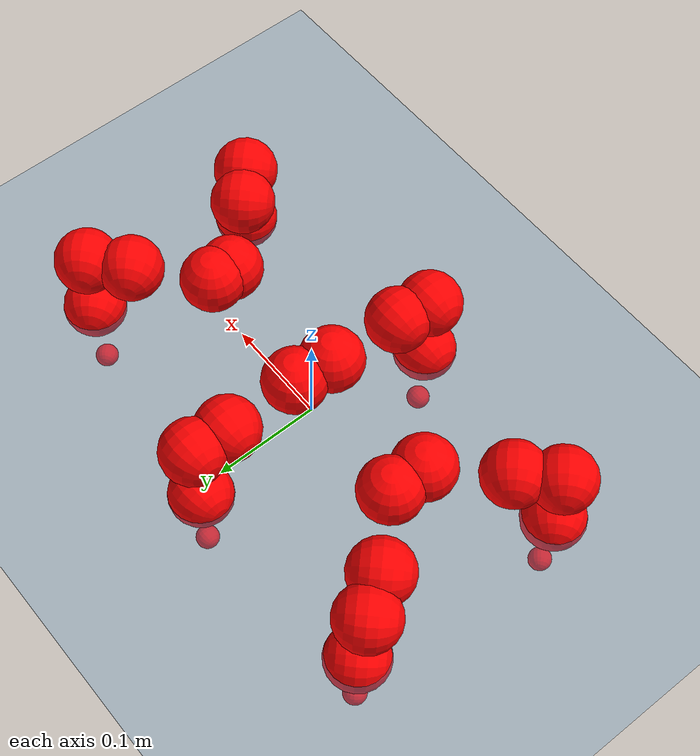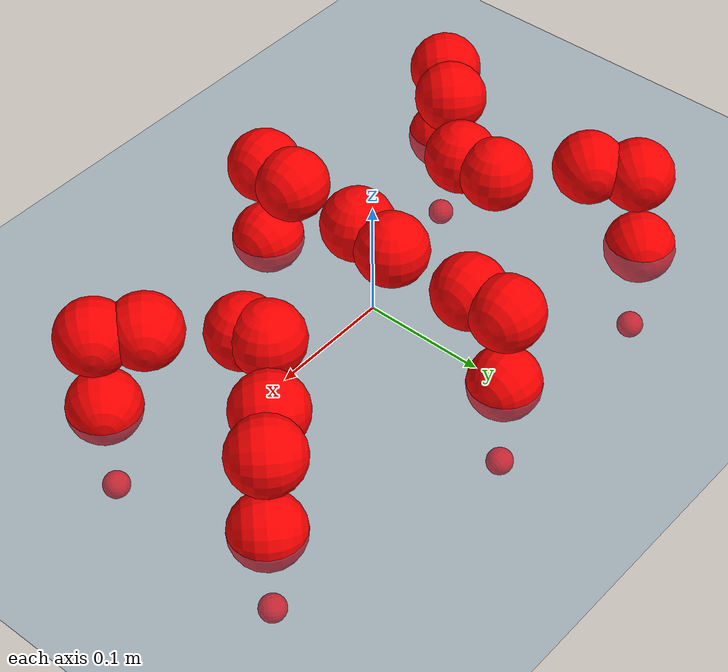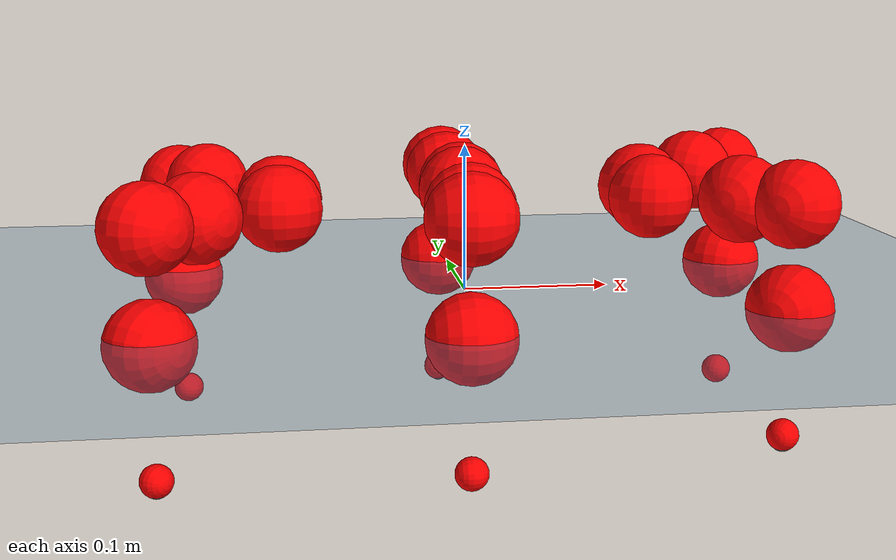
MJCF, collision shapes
<mujoco model="Golem">
  <compiler angle="radian" assetdir="assets" balanceinertia="true" inertiafromgeom="false"/>

  <option timestep="0.005" density="1.2" viscosity="2e-05"/>

  <size nkey="1"/>

  <visual>
    <quality shadowsize="8192"/>
    <map shadowclip="0.5"/>
  </visual>

  <default>
    <default class="/">
      <joint armature="0.01" damping="0.01" frictionloss="0.01"/>
      <geom contype="0" conaffinity="0" group="1" solref="-1000 -80"/>
      <site size="0.01 0.005 0.005" group="5"/>
      <general forcelimited="true" biastype="affine" gainprm="25" biasprm="0 -25 -0.5"/>
      <default class="visual">
        <geom type="mesh" group="2"/>
      </default>
      <default class="collision">
        <geom group="3"/>
      </default>
      <default class="foot">
        <geom size="0.01 0 0" condim="6" group="4" priority="1" solimp="0.015 1 0.01"/>
      </default>
      <default class="reward_collision_sphere">
        <geom group="5" rgba="1 0 0 1"/>
      </default>
    </default>
  </default>

  <asset>
    <texture type="skybox" colorspace="auto" name="//unnamed_texture_0" builtin="gradient" rgb1="0.95 0.95 0.95" rgb2="0.95 0.95 0.95" width="100" height="600"/>
    <texture type="2d" colorspace="auto" name="texplane" builtin="checker" rgb1="0.345 0.575 0.748" rgb2="0.345 0.575 0.748" markrgb="1 1 1" width="512" height="512"/>
    <material name="MatPlane" class="/" texture="texplane" texuniform="true" texrepeat="2 2" specular="0.9"/>
    <mesh name="body" class="/" file="body.stl" scale="0.001 0.001 0.001"/>
    <mesh name="coxa" class="/" file="coxa.stl" scale="0.001 0.001 0.001"/>
    <mesh name="femur" class="/" file="femur.stl" scale="0.001 0.001 0.001"/>
    <mesh name="tibia" class="/" file="tibia.stl" scale="0.001 0.001 0.001"/>
    <mesh name="tarsus" class="/" file="tarsus.stl" scale="0.001 0.001 0.001"/>
  </asset>

  <worldbody>
    <geom name="floor" class="/" size="100 100 0.125" type="plane" group="0" material="MatPlane"/>
    <light name="toplight_shadow" class="/" pos="0 0 5" dir="0.0990148 0.0990148 -0.990148" type="directional" ambient="0.04 0.04 0.04" diffuse="0.55 0.55 0.55" specular="0.12 0.12 0.12"/>
    <light name="toplight_fill" class="/" pos="0 0 5" dir="0.0990148 0.0990148 -0.990148" type="directional" castshadow="false" ambient="0.04 0.04 0.04" diffuse="0.3 0.3 0.3" specular="0.08 0.08 0.08"/>
    <body name="trunk" pos="-0.000222216 0.000133916 0.00251694" quat="0.999999 0.000714262 0.000614294 0.000944774">
      <inertial pos="0.00328788 -0.00011184 -0.00298086" quat="0.999999 0.000701544 -0.00127173 -6.76638e-05" mass="1.40663" diaginertia="0.00366682 5.23433e-05 0.0115642"/>
      <joint name="//unnamed_joint_0" type="free"/>
      <geom name="//unnamed_geom_1" class="/" pos="0 0 0.0653227" quat="1 0 0 0" type="mesh" rgba="0.9 0.9 0.9 1" mesh="body"/>
      <site name="imu" class="/" pos="0.0958635 -0.00912689 0.0976434" size="0.00727392"/>
      <camera name="track" class="/" pos="0 -0.699722 0" quat="0.707107 0.707107 0 0" mode="trackcom"/>
      <camera name="ego_camera" class="/" pos="0.105514 0 0.102067" quat="-0.5 -0.5 0.5 0.5"/>
      <body name="coxa_RR" pos="-0.143219 -0.0329572 0.0593464" quat="0.38248 0.000368248 -0.00120822 -0.923963">
        <inertial pos="-0.000949648 0.000674556 0.000263244" quat="0.999977 0.00486556 0.0036368 -0.00289166" mass="0.0748225" diaginertia="0.00353087 5.18855e-05 0.0111766"/>
        <joint name="coxa_joint_RR" class="/" pos="0 0 0" axis="-0.00799517 -0.00451657 -0.999958" stiffness="0.00695031" range="-3.14405 3.16479" armature="0.00721337" damping="0" frictionloss="0.0079109"/>
        <geom name="//unnamed_geom_2" class="/" type="mesh" rgba="0.2 0.2 0.2 1" mesh="coxa"/>
        <geom name="//unnamed_geom_3" class="reward_collision_sphere" size="0.0290957" pos="-0.0243494 0 0"/>
        <body name="femur_RR" pos="0.0481525 5.78482e-05 0.00336964" quat="0.500506 -0.499786 0.499472 0.500235">
          <inertial pos="-0.0011071 0.000672866 -0.00249223" quat="0.999999 -0.000754207 -0.000678471 0.00112711" mass="0.0764218" diaginertia="0.00361124 5.35743e-05 0.0106531"/>
          <joint name="femur_joint_RR" class="/" pos="0 0 0" axis="0.00991337 0.00577855 -0.999934" range="-3.16404 3.13082" armature="0.00758905" damping="0.000239656" frictionloss="0.00628472"/>
          <geom name="//unnamed_geom_4" class="/" type="mesh" rgba="0.9 0.9 0.9 1" mesh="femur"/>
          <geom name="//unnamed_geom_5" class="reward_collision_sphere" size="0.0290957"/>
          <body name="tibia_RR" pos="0.00068577 -0.0402232 -0.000225303" quat="0.00012257 1 -0.000292462 -0.000201418">
            <inertial pos="0.000125121 0.00188065 0.001651" quat="0.999998 -0.00127487 -0.00161413 0.000648885" mass="0.0767773" diaginertia="0.0033938 5.25204e-05 0.0110997"/>
            <joint name="tibia_joint_RR" class="/" pos="0 0 0" axis="-0.00366787 -0.00650478 0.999972" stiffness="0.00935709" range="-3.17096 3.13289" armature="0.00728317" damping="0.0103202" frictionloss="0.00662613"/>
            <geom name="//unnamed_geom_6" class="/" type="mesh" rgba="0.2 0.2 0.2 1" mesh="tibia"/>
            <geom name="//unnamed_geom_7" class="reward_collision_sphere" size="0.0290957"/>
            <body name="tarsus_RR" pos="0.0719362 0.00132255 -0.000267717" quat="0.999999 -0.000281368 -0.00115262 0.000732041">
              <inertial pos="0.0494881 -0.000675559 0.00205701" quat="0.498803 0.503162 0.499117 0.498904" mass="0.0775988" diaginertia="0.00371074 5.25473e-05 0.0115878"/>
              <joint name="tarsus_joint_RR" class="/" pos="0 0 0" axis="0.000930902 -0.000559716 0.999999" range="-3.18731 3.1054" armature="0.00632839" damping="0.0158754" frictionloss="0.0080293"/>
              <geom name="//unnamed_geom_8" class="/" type="mesh" rgba="0.9 0.9 0.9 1" mesh="tarsus"/>
              <geom name="foot_1" class="foot" size="0.00785985" pos="0.0909046 0 0" quat="0 -0.707107 0 0.707107"/>
              <geom name="//unnamed_geom_10" class="reward_collision_sphere" size="0.0290957"/>
              <geom name="//unnamed_geom_11" class="reward_collision_sphere" size="0.0109109" pos="0.0872521 0 0"/>
              <site name="foot_1" class="foot" pos="0.0909046 0 0" quat="0 -0.707107 0 0.707107" size="0.00727392"/>
            </body>
          </body>
        </body>
      </body>
      <body name="coxa_RM" pos="-0.00428529 -0.0424474 0.0700265" quat="0.706772 0.000322413 -0.000146168 -0.707442">
        <inertial pos="0.0023965 0.000721832 0.00268396" quat="0.999998 -0.00136968 0.00121553 0.00113029" mass="0.0750329" diaginertia="0.00347766 5.08595e-05 0.0108127"/>
        <joint name="coxa_joint_RM" class="/" pos="0 0 0" axis="0.00314258 0.00244485 -0.999992" range="-3.13518 3.13666" armature="0.00646555" damping="0.0199143" frictionloss="0.00695062"/>
        <geom name="//unnamed_geom_12" class="/" type="mesh" rgba="0.2 0.2 0.2 1" mesh="coxa"/>
        <geom name="//unnamed_geom_13" class="reward_collision_sphere" size="0.0290957" pos="-0.0243494 0 0"/>
        <body name="femur_RM" pos="0.0450919 -0.00411623 -0.00132349" quat="0.500144 -0.500035 0.499858 0.499962">
          <inertial pos="0.00149406 0.00210143 0.00062608" quat="0.999922 0.00302586 0.00397203 -0.0114826" mass="0.0800071" diaginertia="0.00363456 5.11309e-05 0.0108091"/>
          <joint name="femur_joint_RM" class="/" pos="0 0 0" axis="-0.00780147 -0.0109343 -0.99991" range="-3.18527 3.15229" armature="0.00706761" damping="0.0147916" frictionloss="0.00770656"/>
          <geom name="//unnamed_geom_14" class="/" type="mesh" rgba="0.9 0.9 0.9 1" mesh="femur"/>
          <geom name="//unnamed_geom_15" class="reward_collision_sphere" size="0.0290957"/>
          <body name="tibia_RM" pos="0.000843609 -0.0324614 -0.00381078" quat="-4.35833e-05 1 0.000430941 0.000580935">
            <inertial pos="0.00270445 -0.00322664 0.000839437" quat="0.999998 0.00133529 0.000588007 -0.00131357" mass="0.0763262" diaginertia="0.00344107 5.19033e-05 0.0109495"/>
            <joint name="tibia_joint_RM" class="/" pos="0 0 0" axis="-0.000600688 0.000254244 1" stiffness="0.000919142" range="-3.09763 3.08812" armature="0.00689819" damping="0.0189372" frictionloss="0.00644089"/>
            <geom name="//unnamed_geom_16" class="/" type="mesh" rgba="0.2 0.2 0.2 1" mesh="tibia"/>
            <geom name="//unnamed_geom_17" class="reward_collision_sphere" size="0.0290957"/>
            <body name="tarsus_RM" pos="0.0740692 0.00042577 -0.000119175" quat="1 0.000154532 0.000344136 -0.000146287">
              <inertial pos="0.0502651 -0.001926 -0.000413491" quat="0.496274 0.500262 0.504206 0.499226" mass="0.0790058" diaginertia="0.00362046 5.40375e-05 0.0108797"/>
              <joint name="tarsus_joint_RM" class="/" pos="0 0 0" axis="-0.000133391 -0.000200227 1" stiffness="0.00431675" range="-3.17184 3.18455" armature="0.00623915" damping="0.00487231" frictionloss="0.00720258"/>
              <geom name="//unnamed_geom_18" class="/" type="mesh" rgba="0.9 0.9 0.9 1" mesh="tarsus"/>
              <geom name="foot_2" class="foot" size="0.00692312" pos="0.0909046 0 0" quat="0 -0.707107 0 0.707107"/>
              <geom name="//unnamed_geom_20" class="reward_collision_sphere" size="0.0290957"/>
              <geom name="//unnamed_geom_21" class="reward_collision_sphere" size="0.0109109" pos="0.0872521 0 0"/>
              <site name="foot_2" class="foot" pos="0.0909046 0 0" quat="0 -0.707107 0 0.707107" size="0.00727392"/>
            </body>
          </body>
        </body>
      </body>
      <body name="coxa_RF" pos="0.145063 -0.0290068 0.0618117" quat="0.923858 -0.000433577 0.000132256 -0.382734">
        <inertial pos="-0.000618257 0.00288651 0.00179084" quat="0.99999 -0.000701278 -0.00396686 0.00187753" mass="0.0739397" diaginertia="0.00354438 5.35791e-05 0.0110393"/>
        <joint name="coxa_joint_RF" class="/" pos="0 0 0" axis="0.000486736 0.00256523 -0.999997" range="-3.19069 3.11244" armature="0.00671726" damping="0.0284094" frictionloss="0.00679106"/>
        <geom name="//unnamed_geom_22" class="/" type="mesh" rgba="0.2 0.2 0.2 1" mesh="coxa"/>
        <geom name="//unnamed_geom_23" class="reward_collision_sphere" size="0.0290957" pos="-0.0243494 0 0"/>
        <body name="femur_RF" pos="0.0450329 -0.00154411 0.00502683" quat="0.500232 -0.500164 0.499579 0.500025">
          <inertial pos="0.000793984 -0.000737869 -0.00123516" quat="0.999966 -0.00255991 -0.00661758 0.00414557" mass="0.0753837" diaginertia="0.00349479 5.41721e-05 0.0108774"/>
          <joint name="femur_joint_RF" class="/" pos="0 0 0" axis="-0.0101245 0.00847005 -0.999913" stiffness="0.00479473" range="-3.11821 3.1388" armature="0.00796662" damping="0" frictionloss="0.00768355"/>
          <geom name="//unnamed_geom_24" class="/" type="mesh" rgba="0.9 0.9 0.9 1" mesh="femur"/>
          <geom name="//unnamed_geom_25" class="reward_collision_sphere" size="0.0290957"/>
          <body name="tibia_RF" pos="0.000299136 -0.036277 0.00218841" quat="-0.000144694 1 0.000213787 0.000282409">
            <inertial pos="0.00093476 0.00205006 -0.00265194" quat="0.999982 -0.00195248 0.00502191 -0.0024919" mass="0.0768254" diaginertia="0.00351377 5.0359e-05 0.0103974"/>
            <joint name="tibia_joint_RF" class="/" pos="0 0 0" axis="-0.000497949 0.00323562 0.999995" range="-3.18765 3.15871" armature="0.00624628" damping="0.0105171" frictionloss="0.00721674"/>
            <geom name="//unnamed_geom_26" class="/" type="mesh" rgba="0.2 0.2 0.2 1" mesh="tibia"/>
            <geom name="//unnamed_geom_27" class="reward_collision_sphere" size="0.0290957"/>
            <body name="tarsus_RF" pos="0.0693106 -0.000941209 -0.00192174" quat="1 -7.03675e-05 0.000425269 -0.000307427">
              <inertial pos="0.0502419 -0.000834168 -0.00249508" quat="0.500636 0.50035 0.49724 0.501763" mass="0.0764644" diaginertia="0.00353283 5.22445e-05 0.0112756"/>
              <joint name="tarsus_joint_RF" class="/" pos="0 0 0" axis="0.00368133 -0.00768856 0.999964" range="-3.17333 3.19019" armature="0.0073026" damping="0.0164218" frictionloss="0.0077128"/>
              <geom name="//unnamed_geom_28" class="/" type="mesh" rgba="0.9 0.9 0.9 1" mesh="tarsus"/>
              <geom name="foot_3" class="foot" size="0.00797946" pos="0.0909046 0 0" quat="0 -0.707107 0 0.707107"/>
              <geom name="//unnamed_geom_30" class="reward_collision_sphere" size="0.0290957"/>
              <geom name="//unnamed_geom_31" class="reward_collision_sphere" size="0.0109109" pos="0.0872521 0 0"/>
              <site name="foot_3" class="foot" pos="0.0909046 0 0" quat="0 -0.707107 0 0.707107" size="0.00727392"/>
            </body>
          </body>
        </body>
      </body>
      <body name="coxa_LR" pos="-0.142377 0.036162 0.060909" quat="0.383043 0.000417092 -0.000128515 0.923731">
        <inertial pos="-0.000827856 -0.00161115 -0.00149697" quat="0.999998 -0.00111413 0.00162024 0.000692661" mass="0.0783925" diaginertia="0.00367373 5.31111e-05 0.0112256"/>
        <joint name="coxa_joint_LR" class="/" pos="0 0 0" axis="0.00208587 0.00865356 -0.99996" range="-3.18573 3.1525" armature="0.00623649" damping="0.0243921" frictionloss="0.00761217"/>
        <geom name="//unnamed_geom_32" class="/" type="mesh" rgba="0.2 0.2 0.2 1" mesh="coxa"/>
        <geom name="//unnamed_geom_33" class="reward_collision_sphere" size="0.0290957" pos="-0.0243494 0 0"/>
        <body name="femur_LR" pos="0.0486427 -0.00145109 0.00266978" quat="0.500032 -0.499806 0.500372 0.49979">
          <inertial pos="0.00287495 -0.00153461 -0.000641575" quat="0.99999 0.00452718 0.000304886 -0.000550515" mass="0.07469" diaginertia="0.00350677 5.18646e-05 0.0113199"/>
          <joint name="femur_joint_LR" class="/" pos="0 0 0" axis="0.00127155 1.08751e-05 0.999999" stiffness="0.00618034" range="-3.09338 3.08361" armature="0.00721075" damping="0.0143352" frictionloss="0.00643015"/>
          <geom name="//unnamed_geom_34" class="/" type="mesh" rgba="0.9 0.9 0.9 1" mesh="femur"/>
          <geom name="//unnamed_geom_35" class="reward_collision_sphere" size="0.0290957"/>
          <body name="tibia_LR" pos="0.00453815 -0.0374243 -0.00719924" quat="-0.000722554 1 0.000226509 -0.000300832">
            <inertial pos="0.00305383 -0.00375341 0.00394016" quat="0.999914 0.0013363 -0.00333733 -0.0126166" mass="0.0729698" diaginertia="0.00344062 5.16373e-05 0.0107742"/>
            <joint name="tibia_joint_LR" class="/" pos="0 0 0" axis="-0.00345933 -0.00738063 -0.999967" range="-3.08628 3.15282" armature="0.00785742" damping="0.00405469" frictionloss="0.00649277"/>
            <geom name="//unnamed_geom_36" class="/" type="mesh" rgba="0.2 0.2 0.2 1" mesh="tibia"/>
            <geom name="//unnamed_geom_37" class="reward_collision_sphere" size="0.0290957"/>
            <body name="tarsus_LR" pos="0.0709925 0.00658117 0.00527995" quat="0.999999 -0.0010987 0.000431941 0.000351497">
              <inertial pos="0.0491698 -0.00146812 -0.00142647" quat="0.498205 0.501529 0.499648 0.500611" mass="0.0786718" diaginertia="0.00361264 5.21363e-05 0.0112851"/>
              <joint name="tarsus_joint_LR" class="/" pos="0 0 0" axis="-0.00858721 0.0101706 -0.999911" range="-3.1656 3.13845" armature="0.0072458" damping="0.0220893" frictionloss="0.00786074"/>
              <geom name="//unnamed_geom_38" class="/" type="mesh" rgba="0.9 0.9 0.9 1" mesh="tarsus"/>
              <geom name="foot_4" class="foot" size="0.00745498" pos="0.0909046 0 0" quat="0.707107 0 -0.707107 0"/>
              <geom name="//unnamed_geom_40" class="reward_collision_sphere" size="0.0290957"/>
              <geom name="//unnamed_geom_41" class="reward_collision_sphere" size="0.0109109" pos="0.0872521 0 0"/>
              <site name="foot_4" class="foot" pos="0.0909046 0 0" quat="0.707107 0 -0.707107 0" size="0.00727392"/>
            </body>
          </body>
        </body>
      </body>
      <body name="coxa_LM" pos="-0.00030617 0.0425001 0.068453" quat="0.706895 0.000641258 0.00122646 0.707317">
        <inertial pos="-0.00247983 -4.84688e-05 0.00173655" quat="0.999987 -0.00218306 -0.00455653 -0.000775629" mass="0.0717088" diaginertia="0.00330281 5.06897e-05 0.0110164"/>
        <joint name="coxa_joint_LM" class="/" pos="0 0 0" axis="3.64701e-06 -1.28131e-06 -1" range="-3.13951 3.09542" armature="0.00682266" damping="0.0179445" frictionloss="0.00738367"/>
        <geom name="//unnamed_geom_42" class="/" type="mesh" rgba="0.2 0.2 0.2 1" mesh="coxa"/>
        <geom name="//unnamed_geom_43" class="reward_collision_sphere" size="0.0290957" pos="-0.0243494 0 0"/>
        <body name="femur_LM" pos="0.0469199 0.00148415 -0.000501074" quat="0.500034 -0.499938 0.500068 0.499961">
          <inertial pos="0.000803785 -0.000873654 0.00045648" quat="0.999961 -0.00868787 0.00160249 -0.000237554" mass="0.0780777" diaginertia="0.00348851 5.32747e-05 0.0112923"/>
          <joint name="femur_joint_LM" class="/" pos="0 0 0" axis="0.0102222 0.00676332 0.999925" stiffness="0.0121325" range="-3.08966 3.12654" armature="0.00639648" damping="0.0105131" frictionloss="0.00782204"/>
          <geom name="//unnamed_geom_44" class="/" type="mesh" rgba="0.9 0.9 0.9 1" mesh="femur"/>
          <geom name="//unnamed_geom_45" class="reward_collision_sphere" size="0.0290957"/>
          <body name="tibia_LM" pos="-0.000342619 -0.0347088 -0.000623326" quat="0.000272681 1 -0.000537433 -0.000413427">
            <inertial pos="0.00181702 -0.00289875 0.000910363" quat="1 0.00014302 0.000671655 0.000528919" mass="0.0794148" diaginertia="0.00362069 5.33438e-05 0.011486"/>
            <joint name="tibia_joint_LM" class="/" pos="0 0 0" axis="0.00123159 -0.00064083 -0.999999" stiffness="0.0103831" range="-3.12456 3.1392" armature="0.00761232" damping="0.00521243" frictionloss="0.00656132"/>
            <geom name="//unnamed_geom_46" class="/" type="mesh" rgba="0.2 0.2 0.2 1" mesh="tibia"/>
            <geom name="//unnamed_geom_47" class="reward_collision_sphere" size="0.0290957"/>
            <body name="tarsus_LM" pos="0.0737144 -0.000434328 -0.00210968" quat="1 8.97387e-06 4.34678e-05 1.00916e-05">
              <inertial pos="0.0464388 -0.00176899 -5.32837e-05" quat="0.498434 0.500785 0.503814 0.49694" mass="0.0772487" diaginertia="0.00363761 5.35723e-05 0.0113414"/>
              <joint name="tarsus_joint_LM" class="/" pos="0 0 0" axis="0.000420233 -0.000834479 -1" range="-3.08681 3.12132" armature="0.00716501" damping="0" frictionloss="0.00724886"/>
              <geom name="//unnamed_geom_48" class="/" type="mesh" rgba="0.9 0.9 0.9 1" mesh="tarsus"/>
              <geom name="foot_5" class="foot" size="0.00780493" pos="0.0909046 0 0" quat="0.707107 0 -0.707107 0"/>
              <geom name="//unnamed_geom_50" class="reward_collision_sphere" size="0.0290957"/>
              <geom name="//unnamed_geom_51" class="reward_collision_sphere" size="0.0109109" pos="0.0872521 0 0"/>
              <site name="foot_5" class="foot" pos="0.0909046 0 0" quat="0.707107 0 -0.707107 0" size="0.00727392"/>
            </body>
          </body>
        </body>
      </body>
      <body name="coxa_LF" pos="0.142669 0.0264874 0.0664134" quat="0.924232 -0.000206975 -0.000638592 0.381832">
        <inertial pos="-0.00152097 -0.000850177 -0.00106612" quat="0.99992 -0.0105509 -0.00543207 -0.00436219" mass="0.0757459" diaginertia="0.00348121 5.23435e-05 0.0110327"/>
        <joint name="coxa_joint_LF" class="/" pos="0 0 0" axis="0.00565173 0.00536763 -0.99997" range="-3.16248 3.0841" armature="0.00723444" damping="0.0051603" frictionloss="0.00807186"/>
        <geom name="//unnamed_geom_52" class="/" type="mesh" rgba="0.2 0.2 0.2 1" mesh="coxa"/>
        <geom name="//unnamed_geom_53" class="reward_collision_sphere" size="0.0290957" pos="-0.0243494 0 0"/>
        <body name="femur_LF" pos="0.0473242 -0.0017199 0.00273278" quat="0.499769 -0.500479 0.500297 0.499454">
          <inertial pos="0.00130314 0.000491467 -0.00158565" quat="0.999923 -0.00439996 -0.000951749 0.0115232" mass="0.0776893" diaginertia="0.00344133 5.37766e-05 0.0109652"/>
          <joint name="femur_joint_LF" class="/" pos="0 0 0" axis="-0.0066372 -0.0080848 0.999945" range="-3.14505 3.0901" armature="0.00708903" damping="0.00452764" frictionloss="0.00829912"/>
          <geom name="//unnamed_geom_54" class="/" type="mesh" rgba="0.9 0.9 0.9 1" mesh="femur"/>
          <geom name="//unnamed_geom_55" class="reward_collision_sphere" size="0.0290957"/>
          <body name="tibia_LF" pos="0.000884106 -0.0397746 -0.00386589" quat="-0.000100382 1 0.000227288 0.000349207">
            <inertial pos="0.00173926 -0.000569113 -0.000348518" quat="0.999936 -0.00563038 -0.00513278 -0.00839239" mass="0.0781946" diaginertia="0.00339582 5.08504e-05 0.0107618"/>
            <joint name="tibia_joint_LF" class="/" pos="0 0 0" axis="0.0104353 0.00200049 -0.999944" range="-3.09582 3.13846" armature="0.00812775" damping="0" frictionloss="0.0068064"/>
            <geom name="//unnamed_geom_56" class="/" type="mesh" rgba="0.2 0.2 0.2 1" mesh="tibia"/>
            <geom name="//unnamed_geom_57" class="reward_collision_sphere" size="0.0290957"/>
            <body name="tarsus_LF" pos="0.0734875 0.00267577 0.00232173" quat="1 -2.92531e-05 3.58566e-05 0.00027263">
              <inertial pos="0.047115 0.000282627 -0.00201274" quat="0.500677 0.498838 0.499961 0.500521" mass="0.0723982" diaginertia="0.00352033 5.06667e-05 0.0108324"/>
              <joint name="tarsus_joint_LF" class="/" pos="0 0 0" axis="-0.000167947 0.00343095 -0.999994" stiffness="0.0364442" range="-3.14127 3.17518" armature="0.00739693" damping="0.034349" frictionloss="0.00778193"/>
              <geom name="//unnamed_geom_58" class="/" type="mesh" rgba="0.9 0.9 0.9 1" mesh="tarsus"/>
              <geom name="foot_6" class="foot" size="0.00747789" pos="0.0909046 0 0" quat="0.707107 0 -0.707107 0"/>
              <geom name="//unnamed_geom_60" class="reward_collision_sphere" size="0.0290957"/>
              <geom name="//unnamed_geom_61" class="reward_collision_sphere" size="0.0109109" pos="0.0872521 0 0"/>
              <site name="foot_6" class="foot" pos="0.0909046 0 0" quat="0.707107 0 -0.707107 0" size="0.00727392"/>
            </body>
          </body>
        </body>
      </body>
    </body>
  </worldbody>

  <contact>
    <pair class="/" geom1="floor" geom2="foot_1" name="//unnamed_contact_0"/>
    <pair class="/" geom1="floor" geom2="foot_2" name="//unnamed_contact_1"/>
    <pair class="/" geom1="floor" geom2="foot_3" name="//unnamed_contact_2"/>
    <pair class="/" geom1="floor" geom2="foot_4" name="//unnamed_contact_3"/>
    <pair class="/" geom1="floor" geom2="foot_5" name="//unnamed_contact_4"/>
    <pair class="/" geom1="floor" geom2="foot_6" name="//unnamed_contact_5"/>
  </contact>

  <actuator>
    <general name="coxa_joint_RR" class="/" joint="coxa_joint_RR" forcerange="-5.48474 5.48474" gainprm="19.1571" biasprm="0 -19.1571 -0.385589"/>
    <general name="femur_joint_RR" class="/" joint="femur_joint_RR" forcerange="-5.82162 5.82162" gainprm="19.1571" biasprm="0 -19.1571 -0.385589"/>
    <general name="tibia_joint_RR" class="/" joint="tibia_joint_RR" forcerange="-4.80858 4.80858" gainprm="19.1571" biasprm="0 -19.1571 -0.385589"/>
    <general name="tarsus_joint_RR" class="/" joint="tarsus_joint_RR" forcerange="-5.7367 5.7367" gainprm="19.1571" biasprm="0 -19.1571 -0.385589"/>
    <general name="coxa_joint_RM" class="/" joint="coxa_joint_RM" forcerange="-5.46248 5.46248" gainprm="19.1571" biasprm="0 -19.1571 -0.385589"/>
    <general name="femur_joint_RM" class="/" joint="femur_joint_RM" forcerange="-5.28469 5.28469" gainprm="19.1571" biasprm="0 -19.1571 -0.385589"/>
    <general name="tibia_joint_RM" class="/" joint="tibia_joint_RM" forcerange="-4.81142 4.81142" gainprm="19.1571" biasprm="0 -19.1571 -0.385589"/>
    <general name="tarsus_joint_RM" class="/" joint="tarsus_joint_RM" forcerange="-4.86699 4.86699" gainprm="19.1571" biasprm="0 -19.1571 -0.385589"/>
    <general name="coxa_joint_RF" class="/" joint="coxa_joint_RF" forcerange="-5.10115 5.10115" gainprm="19.1571" biasprm="0 -19.1571 -0.385589"/>
    <general name="femur_joint_RF" class="/" joint="femur_joint_RF" forcerange="-5.52997 5.52997" gainprm="19.1571" biasprm="0 -19.1571 -0.385589"/>
    <general name="tibia_joint_RF" class="/" joint="tibia_joint_RF" forcerange="-4.78961 4.78961" gainprm="19.1571" biasprm="0 -19.1571 -0.385589"/>
    <general name="tarsus_joint_RF" class="/" joint="tarsus_joint_RF" forcerange="-5.29258 5.29258" gainprm="19.1571" biasprm="0 -19.1571 -0.385589"/>
    <general name="coxa_joint_LR" class="/" joint="coxa_joint_LR" forcerange="-5.77157 5.77157" gainprm="19.1571" biasprm="0 -19.1571 -0.385589"/>
    <general name="femur_joint_LR" class="/" joint="femur_joint_LR" forcerange="-5.08766 5.08766" gainprm="19.1571" biasprm="0 -19.1571 -0.385589"/>
    <general name="tibia_joint_LR" class="/" joint="tibia_joint_LR" forcerange="-4.79977 4.79977" gainprm="19.1571" biasprm="0 -19.1571 -0.385589"/>
    <general name="tarsus_joint_LR" class="/" joint="tarsus_joint_LR" forcerange="-5.04703 5.04703" gainprm="19.1571" biasprm="0 -19.1571 -0.385589"/>
    <general name="coxa_joint_LM" class="/" joint="coxa_joint_LM" forcerange="-5.32364 5.32364" gainprm="19.1571" biasprm="0 -19.1571 -0.385589"/>
    <general name="femur_joint_LM" class="/" joint="femur_joint_LM" forcerange="-5.36491 5.36491" gainprm="19.1571" biasprm="0 -19.1571 -0.385589"/>
    <general name="tibia_joint_LM" class="/" joint="tibia_joint_LM" forcerange="-5.73799 5.73799" gainprm="19.1571" biasprm="0 -19.1571 -0.385589"/>
    <general name="tarsus_joint_LM" class="/" joint="tarsus_joint_LM" forcerange="-5.3611 5.3611" gainprm="19.1571" biasprm="0 -19.1571 -0.385589"/>
    <general name="coxa_joint_LF" class="/" joint="coxa_joint_LF" forcerange="-5.26853 5.26853" gainprm="19.1571" biasprm="0 -19.1571 -0.385589"/>
    <general name="femur_joint_LF" class="/" joint="femur_joint_LF" forcerange="-5.21418 5.21418" gainprm="19.1571" biasprm="0 -19.1571 -0.385589"/>
    <general name="tibia_joint_LF" class="/" joint="tibia_joint_LF" forcerange="-5.49788 5.49788" gainprm="19.1571" biasprm="0 -19.1571 -0.385589"/>
    <general name="tarsus_joint_LF" class="/" joint="tarsus_joint_LF" forcerange="-4.78143 4.78143" gainprm="19.1571" biasprm="0 -19.1571 -0.385589"/>
  </actuator>

  <sensor>
    <gyro site="imu" name="imu_angular_velocity"/>
    <velocimeter site="imu" name="imu_linear_velocity"/>
    <framelinvel objtype="site" objname="foot_1" name="foot_1_global_linear_velocity"/>
    <framelinvel objtype="site" objname="foot_2" name="foot_2_global_linear_velocity"/>
    <framelinvel objtype="site" objname="foot_3" name="foot_3_global_linear_velocity"/>
    <framelinvel objtype="site" objname="foot_4" name="foot_4_global_linear_velocity"/>
    <framelinvel objtype="site" objname="foot_5" name="foot_5_global_linear_velocity"/>
    <framelinvel objtype="site" objname="foot_6" name="foot_6_global_linear_velocity"/>
  </sensor>

  <keyframe>
    <key name="home" qpos="0 0 0.1457 1 0 0 0 0 0 0 0 0 0 0 0 0 0 0 0 0 0 0 0 0 0 0 0 0 0 0 0"/>
  </keyframe>
</mujoco>
